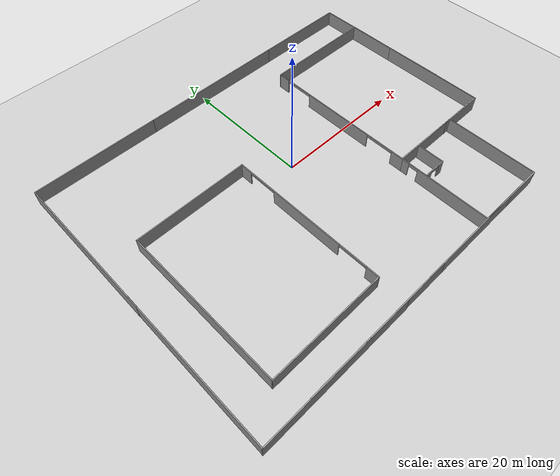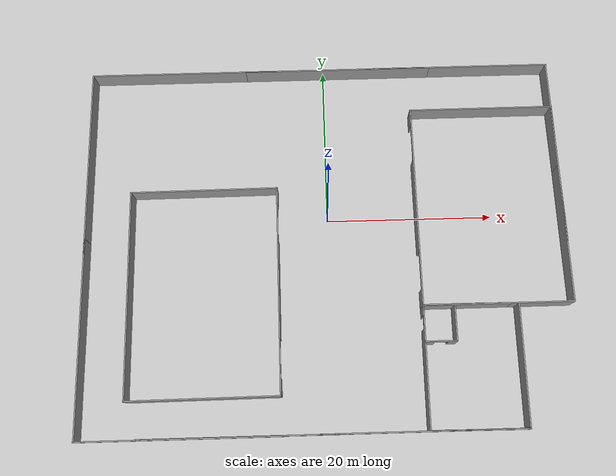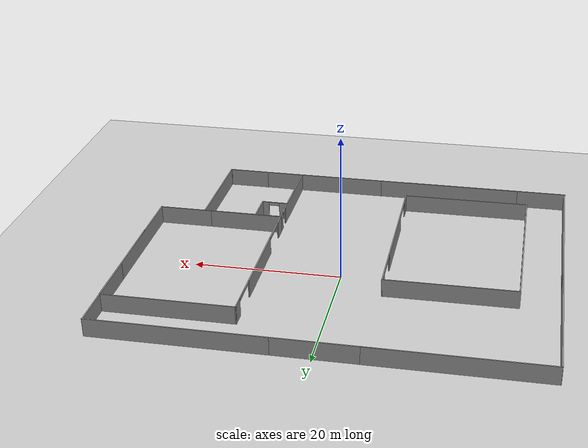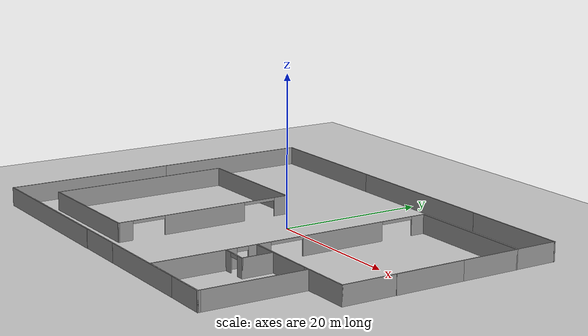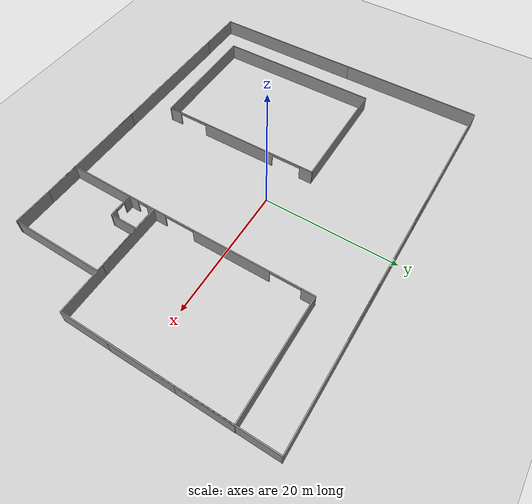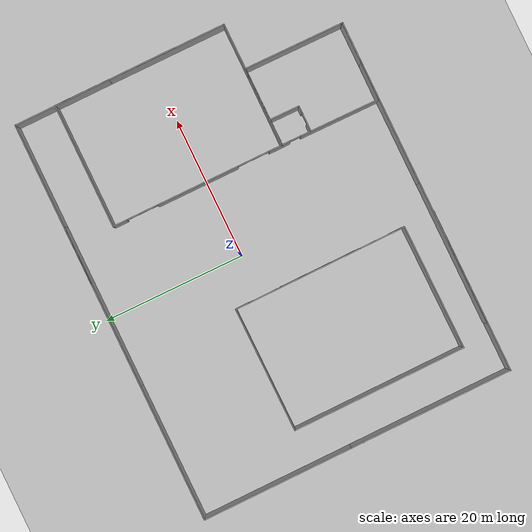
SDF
<sdf version="1.6">
 <world name="default">
  <light name="sun" type="directional">
   <pose>0 0 10 0 -0 0</pose>
   <diffuse>0.8 0.8 0.8 1</diffuse>
   <specular>0.1 0.1 0.1 1</specular>
   <attenuation>
    <range>1000</range>
    <constant>0.9</constant>
    <linear>0.01</linear>
    <quadratic>0.001</quadratic>
   </attenuation>
   <direction>-0.5 0.5 -1</direction>
  </light>
  <gravity>0 0 -9.8</gravity>
  <magnetic_field>6e-06 2.3e-05 -4.2e-05</magnetic_field>
  <atmosphere type="adiabatic"/>
  <physics name="default_physics" default="0" type="ode">
   <max_step_size>0.001</max_step_size>
   <real_time_factor>1</real_time_factor>
   <real_time_update_rate>1000</real_time_update_rate>
  </physics>
  <scene><ambient>0.4 0.4 0.4 1</ambient><background>0.7 0.7 0.7 1</background><shadows>1</shadows></scene>
  <spherical_coordinates>
   <surface_model>EARTH_WGS84</surface_model>
   <latitude_deg>0</latitude_deg>
   <longitude_deg>0</longitude_deg>
   <elevation>0</elevation>
   <heading_deg>0</heading_deg>
  </spherical_coordinates>
  <model name="office3_0">
   <pose>16.2882 -18.1113 0 0 -0 1.56429</pose>
   <link name="Wall_226">
    <collision name="Wall_226_Collision">
     <geometry><box><size>11.25 0.15 2.5</size></box></geometry>
     <pose>0 0 1.25 0 -0 0</pose>
    </collision>
    <visual name="Wall_226_Visual">
     <pose>0 0 1.25 0 -0 0</pose>
     <geometry><box><size>11.25 0.15 2.5</size></box></geometry>
     <material>
      <script><uri>file://media/materials/scripts/gazebo.material</uri><name>Gazebo/Grey</name></script>
      <ambient>1 1 1 1</ambient>
     </material>
    </visual>
    <pose>-7.05 0 0 0 -0 1.5708</pose>
   </link>
   <link name="Wall_228">
    <pose>0 5.55 0 0 -0 0</pose>
    <visual name="Wall_228_Visual_0">
     <pose>-1.41788 0 1.25 0 -0 0</pose>
     <geometry><box><size>11.4142 0.15 2.5</size></box></geometry>
     <material>
      <script><uri>file://media/materials/scripts/gazebo.material</uri><name>Gazebo/Grey</name></script>
      <ambient>1 1 1 1</ambient>
     </material>
    </visual>
    <collision name="Wall_228_Collision_0">
     <geometry><box><size>11.4142 0.15 2.5</size></box></geometry>
     <pose>-1.41788 0 1.25 0 -0 0</pose>
    </collision>
    <visual name="Wall_228_Visual_1">
     <pose>6.45712 0 1.25 0 -0 0</pose>
     <geometry><box><size>1.33575 0.15 2.5</size></box></geometry>
     <material>
      <script><uri>file://media/materials/scripts/gazebo.material</uri><name>Gazebo/Grey</name></script>
      <ambient>1 1 1 1</ambient>
     </material>
    </visual>
    <collision name="Wall_228_Collision_1">
     <geometry><box><size>1.33575 0.15 2.5</size></box></geometry>
     <pose>6.45712 0 1.25 0 -0 0</pose>
    </collision>
    <visual name="Wall_228_Visual_2">
     <pose>5.03925 0 2.25 0 -0 0</pose>
     <geometry><box><size>1.5 0.15 0.5</size></box></geometry>
     <material>
      <script><uri>file://media/materials/scripts/gazebo.material</uri><name>Gazebo/Grey</name></script>
      <ambient>1 1 1 1</ambient>
     </material>
    </visual>
    <collision name="Wall_228_Collision_2">
     <geometry><box><size>1.5 0.15 0.5</size></box></geometry>
     <pose>5.03925 0 2.25 0 -0 0</pose>
    </collision>
   </link>
   <link name="Wall_229">
    <collision name="Wall_229_Collision">
     <geometry><box><size>11.25 0.15 2.5</size></box></geometry>
     <pose>0 0 1.25 0 -0 0</pose>
    </collision>
    <visual name="Wall_229_Visual">
     <pose>0 0 1.25 0 -0 0</pose>
     <geometry><box><size>11.25 0.15 2.5</size></box></geometry>
     <material>
      <script><uri>file://media/materials/scripts/gazebo.material</uri><name>Gazebo/Grey</name></script>
      <ambient>1 1 1 1</ambient>
     </material>
    </visual>
    <pose>7.05 0 0 0 0 -1.5708</pose>
   </link>
   <link name="Wall_230">
    <collision name="Wall_230_Collision">
     <geometry><box><size>14 0.15 2.5</size></box></geometry>
     <pose>0 0 1.25 0 -0 0</pose>
    </collision>
    <visual name="Wall_230_Visual">
     <pose>0 0 1.25 0 -0 0</pose>
     <geometry><box><size>14 0.15 2.5</size></box></geometry>
     <material>
      <script><uri>file://media/materials/scripts/gazebo.material</uri><name>Gazebo/Grey</name></script>
      <ambient>1 1 1 1</ambient>
     </material>
    </visual>
    <pose>0.125 -5.55 0 0 -0 3.14159</pose>
   </link>
   <link name="Wall_231">
    <collision name="Wall_231_Collision">
     <geometry><box><size>0.4 0.15 2.5</size></box></geometry>
     <pose>0 0 1.25 0 -0 0</pose>
    </collision>
    <visual name="Wall_231_Visual">
     <pose>0 0 1.25 0 -0 0</pose>
     <geometry><box><size>0.4 0.15 2.5</size></box></geometry>
     <material>
      <script><uri>file://media/materials/scripts/gazebo.material</uri><name>Gazebo/Grey</name></script>
      <ambient>1 1 1 1</ambient>
     </material>
    </visual>
    <pose>-6.925 -5.55 0 0 -0 3.14159</pose>
   </link>
   <link name="Wall_235">
    <pose>2.82004 3.69571 0 0 0 -1.5708</pose>
    <visual name="Wall_235_Visual_0">
     <pose>-1.26863 0 1.25 0 -0 0</pose>
     <geometry><box><size>1.21274 0.15 2.5</size></box></geometry>
     <material>
      <script><uri>file://media/materials/scripts/gazebo.material</uri><name>Gazebo/Grey</name></script>
      <ambient>1 1 1 1</ambient>
     </material>
    </visual>
    <collision name="Wall_235_Collision_0">
     <geometry><box><size>1.21274 0.15 2.5</size></box></geometry>
     <pose>-1.26863 0 1.25 0 -0 0</pose>
    </collision>
    <visual name="Wall_235_Visual_1">
     <pose>1.35637 0 1.25 0 -0 0</pose>
     <geometry><box><size>1.03726 0.15 2.5</size></box></geometry>
     <material>
      <script><uri>file://media/materials/scripts/gazebo.material</uri><name>Gazebo/Grey</name></script>
      <ambient>1 1 1 1</ambient>
     </material>
    </visual>
    <collision name="Wall_235_Collision_1">
     <geometry><box><size>1.03726 0.15 2.5</size></box></geometry>
     <pose>1.35637 0 1.25 0 -0 0</pose>
    </collision>
    <visual name="Wall_235_Visual_2">
     <pose>0.087742 0 2.25 0 -0 0</pose>
     <geometry><box><size>1.5 0.15 0.5</size></box></geometry>
     <material>
      <script><uri>file://media/materials/scripts/gazebo.material</uri><name>Gazebo/Grey</name></script>
      <ambient>1 1 1 1</ambient>
     </material>
    </visual>
    <collision name="Wall_235_Collision_2">
     <geometry><box><size>1.5 0.15 0.5</size></box></geometry>
     <pose>0.087742 0 2.25 0 -0 0</pose>
    </collision>
   </link>
   <link name="Wall_236">
    <collision name="Wall_236_Collision">
     <geometry><box><size>4.25 0.15 2.5</size></box></geometry>
     <pose>0 0 1.25 0 -0 0</pose>
    </collision>
    <visual name="Wall_236_Visual">
     <pose>0 0 1.25 0 -0 0</pose>
     <geometry><box><size>4.25 0.15 2.5</size></box></geometry>
     <material>
      <script><uri>file://media/materials/scripts/gazebo.material</uri><name>Gazebo/Grey</name></script>
      <ambient>1 1 1 1</ambient>
     </material>
    </visual>
    <pose>4.87004 1.89571 0 0 -0 0</pose>
   </link>
   <static>1</static>
  </model>
  <model name="park_1">
   <pose>19.5492 1.20649 0 0 -0 1.57203</pose>
   <link name="Wall_10">
    <collision name="Wall_10_Collision">
     <geometry><box><size>24.75 0.15 2.5</size></box></geometry>
     <pose>0 0 1.25 0 -0 0</pose>
    </collision>
    <visual name="Wall_10_Visual">
     <pose>0 0 1.25 0 -0 0</pose>
     <geometry><box><size>24.75 0.15 2.5</size></box></geometry>
     <material>
      <script><uri>file://media/materials/scripts/gazebo.material</uri><name>Gazebo/Grey</name></script>
      <ambient>1 1 1 1</ambient>
     </material>
    </visual>
    <pose>0 -8.8 0 0 -0 0</pose>
   </link>
   <link name="Wall_11">
    <collision name="Wall_11_Collision">
     <geometry><box><size>17.75 0.15 2.5</size></box></geometry>
     <pose>0 0 1.25 0 -0 0</pose>
    </collision>
    <visual name="Wall_11_Visual">
     <pose>0 0 1.25 0 -0 0</pose>
     <geometry><box><size>17.75 0.15 2.5</size></box></geometry>
     <material>
      <script><uri>file://media/materials/scripts/gazebo.material</uri><name>Gazebo/Grey</name></script>
      <ambient>1 1 1 1</ambient>
     </material>
    </visual>
    <pose>12.3 0 0 0 -0 1.5708</pose>
   </link>
   <link name="Wall_12">
    <pose>0 8.8 0 0 -0 3.14159</pose>
    <visual name="Wall_12_Visual_0">
     <pose>-11.3671 0 1.25 0 -0 0</pose>
     <geometry><box><size>2.0158 0.15 2.5</size></box></geometry>
     <material>
      <script><uri>file://media/materials/scripts/gazebo.material</uri><name>Gazebo/Grey</name></script>
      <ambient>1 1 1 1</ambient>
     </material>
    </visual>
    <collision name="Wall_12_Collision_0">
     <geometry><box><size>2.0158 0.15 2.5</size></box></geometry>
     <pose>-11.3671 0 1.25 0 -0 0</pose>
    </collision>
    <visual name="Wall_12_Visual_1">
     <pose>-0.005473 0 1.25 0 -0 0</pose>
     <geometry><box><size>11.7075 0.15 2.5</size></box></geometry>
     <material>
      <script><uri>file://media/materials/scripts/gazebo.material</uri><name>Gazebo/Grey</name></script>
      <ambient>1 1 1 1</ambient>
     </material>
    </visual>
    <collision name="Wall_12_Collision_1">
     <geometry><box><size>11.7075 0.15 2.5</size></box></geometry>
     <pose>-0.005473 0 1.25 0 -0 0</pose>
    </collision>
    <visual name="Wall_12_Visual_2">
     <pose>11.3616 0 1.25 0 -0 0</pose>
     <geometry><box><size>2.02674 0.15 2.5</size></box></geometry>
     <material>
      <script><uri>file://media/materials/scripts/gazebo.material</uri><name>Gazebo/Grey</name></script>
      <ambient>1 1 1 1</ambient>
     </material>
    </visual>
    <collision name="Wall_12_Collision_2">
     <geometry><box><size>2.02674 0.15 2.5</size></box></geometry>
     <pose>11.3616 0 1.25 0 -0 0</pose>
    </collision>
    <visual name="Wall_12_Visual_3">
     <pose>-8.1092 0 2.3 0 -0 0</pose>
     <geometry><box><size>4.5 0.15 0.4</size></box></geometry>
     <material>
      <script><uri>file://media/materials/scripts/gazebo.material</uri><name>Gazebo/Grey</name></script>
      <ambient>1 1 1 1</ambient>
     </material>
    </visual>
    <collision name="Wall_12_Collision_3">
     <geometry><box><size>4.5 0.15 0.4</size></box></geometry>
     <pose>-8.1092 0 2.3 0 -0 0</pose>
    </collision>
    <visual name="Wall_12_Visual_4">
     <pose>8.09826 0 2.3 0 -0 0</pose>
     <geometry><box><size>4.5 0.15 0.4</size></box></geometry>
     <material>
      <script><uri>file://media/materials/scripts/gazebo.material</uri><name>Gazebo/Grey</name></script>
      <ambient>1 1 1 1</ambient>
     </material>
    </visual>
    <collision name="Wall_12_Collision_4">
     <geometry><box><size>4.5 0.15 0.4</size></box></geometry>
     <pose>8.09826 0 2.3 0 -0 0</pose>
    </collision>
   </link>
   <link name="Wall_4">
    <collision name="Wall_4_Collision">
     <geometry><box><size>17.75 0.15 2.5</size></box></geometry>
     <pose>0 0 1.25 0 -0 0</pose>
    </collision>
    <visual name="Wall_4_Visual">
     <pose>0 0 1.25 0 -0 0</pose>
     <geometry><box><size>17.75 0.15 2.5</size></box></geometry>
     <material>
      <script><uri>file://media/materials/scripts/gazebo.material</uri><name>Gazebo/Grey</name></script>
      <ambient>1 1 1 1</ambient>
     </material>
    </visual>
    <pose>-12.3 0 0 0 0 -1.5708</pose>
   </link>
   <static>1</static>
  </model>
  <model name="ground_plane">
   <static>1</static>
   <link name="link">
    <collision name="collision">
     <geometry><plane><normal>0 0 1</normal><size>100 100</size></plane></geometry>
     <surface><friction><ode><mu>100</mu><mu2>50</mu2></ode></friction></surface>
    </collision>
    <visual name="visual">
     <cast_shadows>0</cast_shadows>
     <geometry><plane><normal>0 0 1</normal><size>100 100</size></plane></geometry>
     <material>
      <script><uri>file://media/materials/scripts/gazebo.material</uri><name>Gazebo/Grey</name></script>
     </material>
    </visual>
   </link>
   <pose>-15.0444 -9.09866 0 0 -0 0</pose>
  </model>
  <model name="park_1_clone">
   <pose>-14.7385 -8.62619 0 0 0 -1.56406</pose>
   <link name="Wall_10">
    <collision name="Wall_10_Collision">
     <geometry><box><size>24.75 0.15 2.5</size></box></geometry>
     <pose>0 0 1.25 0 -0 0</pose>
    </collision>
    <visual name="Wall_10_Visual">
     <pose>0 0 1.25 0 -0 0</pose>
     <geometry><box><size>24.75 0.15 2.5</size></box></geometry>
     <material>
      <script><uri>file://media/materials/scripts/gazebo.material</uri><name>Gazebo/Grey</name></script>
      <ambient>1 1 1 1</ambient>
     </material>
    </visual>
    <pose>0 -8.8 0 0 -0 0</pose>
   </link>
   <link name="Wall_11">
    <collision name="Wall_11_Collision">
     <geometry><box><size>17.75 0.15 2.5</size></box></geometry>
     <pose>0 0 1.25 0 -0 0</pose>
    </collision>
    <visual name="Wall_11_Visual">
     <pose>0 0 1.25 0 -0 0</pose>
     <geometry><box><size>17.75 0.15 2.5</size></box></geometry>
     <material>
      <script><uri>file://media/materials/scripts/gazebo.material</uri><name>Gazebo/Grey</name></script>
      <ambient>1 1 1 1</ambient>
     </material>
    </visual>
    <pose>12.3 0 0 0 -0 1.5708</pose>
   </link>
   <link name="Wall_12">
    <pose>0 8.8 0 0 -0 3.14159</pose>
    <visual name="Wall_12_Visual_0">
     <pose>-11.3671 0 1.25 0 -0 0</pose>
     <geometry><box><size>2.0158 0.15 2.5</size></box></geometry>
     <material>
      <script><uri>file://media/materials/scripts/gazebo.material</uri><name>Gazebo/Grey</name></script>
      <ambient>1 1 1 1</ambient>
     </material>
    </visual>
    <collision name="Wall_12_Collision_0">
     <geometry><box><size>2.0158 0.15 2.5</size></box></geometry>
     <pose>-11.3671 0 1.25 0 -0 0</pose>
    </collision>
    <visual name="Wall_12_Visual_1">
     <pose>-0.005473 0 1.25 0 -0 0</pose>
     <geometry><box><size>11.7075 0.15 2.5</size></box></geometry>
     <material>
      <script><uri>file://media/materials/scripts/gazebo.material</uri><name>Gazebo/Grey</name></script>
      <ambient>1 1 1 1</ambient>
     </material>
    </visual>
    <collision name="Wall_12_Collision_1">
     <geometry><box><size>11.7075 0.15 2.5</size></box></geometry>
     <pose>-0.005473 0 1.25 0 -0 0</pose>
    </collision>
    <visual name="Wall_12_Visual_2">
     <pose>11.3616 0 1.25 0 -0 0</pose>
     <geometry><box><size>2.02674 0.15 2.5</size></box></geometry>
     <material>
      <script><uri>file://media/materials/scripts/gazebo.material</uri><name>Gazebo/Grey</name></script>
      <ambient>1 1 1 1</ambient>
     </material>
    </visual>
    <collision name="Wall_12_Collision_2">
     <geometry><box><size>2.02674 0.15 2.5</size></box></geometry>
     <pose>11.3616 0 1.25 0 -0 0</pose>
    </collision>
    <visual name="Wall_12_Visual_3">
     <pose>-8.1092 0 2.3 0 -0 0</pose>
     <geometry><box><size>4.5 0.15 0.4</size></box></geometry>
     <material>
      <script><uri>file://media/materials/scripts/gazebo.material</uri><name>Gazebo/Grey</name></script>
      <ambient>1 1 1 1</ambient>
     </material>
    </visual>
    <collision name="Wall_12_Collision_3">
     <geometry><box><size>4.5 0.15 0.4</size></box></geometry>
     <pose>-8.1092 0 2.3 0 -0 0</pose>
    </collision>
    <visual name="Wall_12_Visual_4">
     <pose>8.09826 0 2.3 0 -0 0</pose>
     <geometry><box><size>4.5 0.15 0.4</size></box></geometry>
     <material>
      <script><uri>file://media/materials/scripts/gazebo.material</uri><name>Gazebo/Grey</name></script>
      <ambient>1 1 1 1</ambient>
     </material>
    </visual>
    <collision name="Wall_12_Collision_4">
     <geometry><box><size>4.5 0.15 0.4</size></box></geometry>
     <pose>8.09826 0 2.3 0 -0 0</pose>
    </collision>
   </link>
   <link name="Wall_4">
    <collision name="Wall_4_Collision">
     <geometry><box><size>17.75 0.15 2.5</size></box></geometry>
     <pose>0 0 1.25 0 -0 0</pose>
    </collision>
    <visual name="Wall_4_Visual">
     <pose>0 0 1.25 0 -0 0</pose>
     <geometry><box><size>17.75 0.15 2.5</size></box></geometry>
     <material>
      <script><uri>file://media/materials/scripts/gazebo.material</uri><name>Gazebo/Grey</name></script>
      <ambient>1 1 1 1</ambient>
     </material>
    </visual>
    <pose>-12.3 0 0 0 0 -1.5708</pose>
   </link>
   <static>1</static>
  </model>
  <model name="wall">
   <pose>-17.432 19.3335 0 0 -0 0</pose>
   <link name="Wall_4">
    <collision name="Wall_4_Collision">
     <geometry><box><size>23.25 0.15 2.5</size></box></geometry>
     <pose>0 0 1.25 0 -0 0</pose>
    </collision>
    <visual name="Wall_4_Visual">
     <pose>0 0 1.25 0 -0 0</pose>
     <geometry><box><size>23.25 0.15 2.5</size></box></geometry>
     <material>
      <script><uri>file://media/materials/scripts/gazebo.material</uri><name>Gazebo/Grey</name></script>
      <ambient>1 1 1 1</ambient>
     </material>
     <meta><layer>0</layer></meta>
    </visual>
   </link>
   <static>1</static>
  </model>
  <model name="wall_0">
   <pose>1.8655 19.3313 0 0 -0 0</pose>
   <link name="Wall_4">
    <collision name="Wall_4_Collision">
     <geometry><box><size>23.25 0.15 2.5</size></box></geometry>
     <pose>0 0 1.25 0 -0 0</pose>
    </collision>
    <visual name="Wall_4_Visual">
     <pose>0 0 1.25 0 -0 0</pose>
     <geometry><box><size>23.25 0.15 2.5</size></box></geometry>
     <material>
      <script><uri>file://media/materials/scripts/gazebo.material</uri><name>Gazebo/Grey</name></script>
      <ambient>1 1 1 1</ambient>
     </material>
     <meta><layer>0</layer></meta>
    </visual>
   </link>
   <static>1</static>
  </model>
  <model name="wall_1">
   <pose>16.7457 19.3405 0 0 -0 0</pose>
   <link name="Wall_4">
    <collision name="Wall_4_Collision">
     <geometry><box><size>23.25 0.15 2.5</size></box></geometry>
     <pose>0 0 1.25 0 -0 0</pose>
    </collision>
    <visual name="Wall_4_Visual">
     <pose>0 0 1.25 0 -0 0</pose>
     <geometry><box><size>23.25 0.15 2.5</size></box></geometry>
     <material>
      <script><uri>file://media/materials/scripts/gazebo.material</uri><name>Gazebo/Grey</name></script>
      <ambient>1 1 1 1</ambient>
     </material>
     <meta><layer>0</layer></meta>
    </visual>
   </link>
   <static>1</static>
  </model>
  <model name="wall_clone">
   <pose>-28.9599 7.66907 0 0 0 -1.56544</pose>
   <link name="Wall_4">
    <collision name="Wall_4_Collision">
     <geometry><box><size>23.25 0.15 2.5</size></box></geometry>
     <pose>0 0 1.25 0 -0 0</pose>
    </collision>
    <visual name="Wall_4_Visual">
     <pose>0 0 1.25 0 -0 0</pose>
     <geometry><box><size>23.25 0.15 2.5</size></box></geometry>
     <material>
      <script><uri>file://media/materials/scripts/gazebo.material</uri><name>Gazebo/Grey</name></script>
      <ambient>1 1 1 1</ambient>
     </material>
     <meta><layer>0</layer></meta>
    </visual>
   </link>
   <static>1</static>
  </model>
  <model name="wall_clone_clone_0">
   <pose>28.3324 7.75469 0 0 0 -1.56544</pose>
   <link name="Wall_4">
    <collision name="Wall_4_Collision">
     <geometry><box><size>23.25 0.15 2.5</size></box></geometry>
     <pose>0 0 1.25 0 -0 0</pose>
    </collision>
    <visual name="Wall_4_Visual">
     <pose>0 0 1.25 0 -0 0</pose>
     <geometry><box><size>23.25 0.15 2.5</size></box></geometry>
     <material>
      <script><uri>file://media/materials/scripts/gazebo.material</uri><name>Gazebo/Grey</name></script>
      <ambient>1 1 1 1</ambient>
     </material>
     <meta><layer>0</layer></meta>
    </visual>
   </link>
   <static>1</static>
  </model>
  <model name="wall_clone_0">
   <pose>-17.2593 -25.2165 0 0 -0 0</pose>
   <link name="Wall_4">
    <collision name="Wall_4_Collision">
     <geometry><box><size>23.25 0.15 2.5</size></box></geometry>
     <pose>0 0 1.25 0 -0 0</pose>
    </collision>
    <visual name="Wall_4_Visual">
     <pose>0 0 1.25 0 -0 0</pose>
     <geometry><box><size>23.25 0.15 2.5</size></box></geometry>
     <material>
      <script><uri>file://media/materials/scripts/gazebo.material</uri><name>Gazebo/Grey</name></script>
      <ambient>1 1 1 1</ambient>
     </material>
     <meta><layer>0</layer></meta>
    </visual>
   </link>
   <static>1</static>
  </model>
  <model name="wall_clone_1">
   <pose>-10.284 -25.1692 0 0 -0 0</pose>
   <link name="Wall_4">
    <collision name="Wall_4_Collision">
     <geometry><box><size>23.25 0.15 2.5</size></box></geometry>
     <pose>0 0 1.25 0 -0 0</pose>
    </collision>
    <visual name="Wall_4_Visual">
     <pose>0 0 1.25 0 -0 0</pose>
     <geometry><box><size>23.25 0.15 2.5</size></box></geometry>
     <material>
      <script><uri>file://media/materials/scripts/gazebo.material</uri><name>Gazebo/Grey</name></script>
      <ambient>1 1 1 1</ambient>
     </material>
     <meta><layer>0</layer></meta>
    </visual>
   </link>
   <static>1</static>
  </model>
  <model name="wall_clone_2">
   <pose>10.0869 -25.1598 0 0 -0 0</pose>
   <link name="Wall_4">
    <collision name="Wall_4_Collision">
     <geometry><box><size>23.25 0.15 2.5</size></box></geometry>
     <pose>0 0 1.25 0 -0 0</pose>
    </collision>
    <visual name="Wall_4_Visual">
     <pose>0 0 1.25 0 -0 0</pose>
     <geometry><box><size>23.25 0.15 2.5</size></box></geometry>
     <material>
      <script><uri>file://media/materials/scripts/gazebo.material</uri><name>Gazebo/Grey</name></script>
      <ambient>1 1 1 1</ambient>
     </material>
     <meta><layer>0</layer></meta>
    </visual>
   </link>
   <static>1</static>
  </model>
  <model name="wall_clone_clone_clone">
   <pose>-28.8336 -13.6581 0 0 0 -1.56544</pose>
   <link name="Wall_4">
    <collision name="Wall_4_Collision">
     <geometry><box><size>23.25 0.15 2.5</size></box></geometry>
     <pose>0 0 1.25 0 -0 0</pose>
    </collision>
    <visual name="Wall_4_Visual">
     <pose>0 0 1.25 0 -0 0</pose>
     <geometry><box><size>23.25 0.15 2.5</size></box></geometry>
     <material>
      <script><uri>file://media/materials/scripts/gazebo.material</uri><name>Gazebo/Grey</name></script>
      <ambient>1 1 1 1</ambient>
     </material>
     <meta><layer>0</layer></meta>
    </visual>
   </link>
   <static>1</static>
  </model>
 </world>
</sdf>
